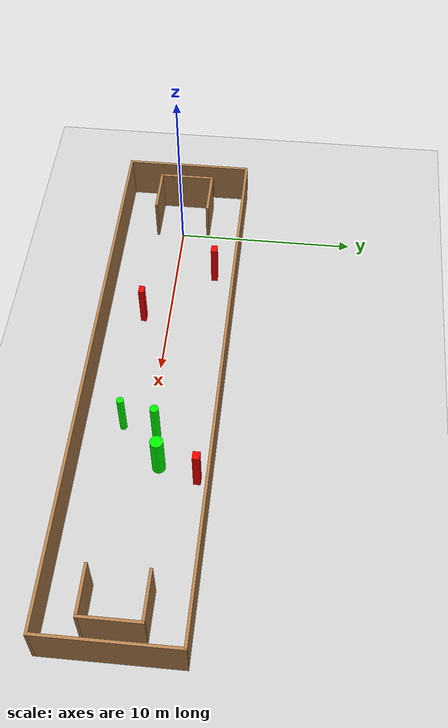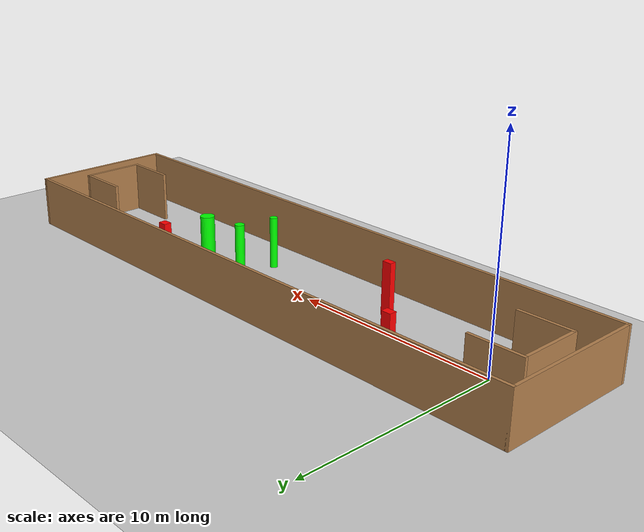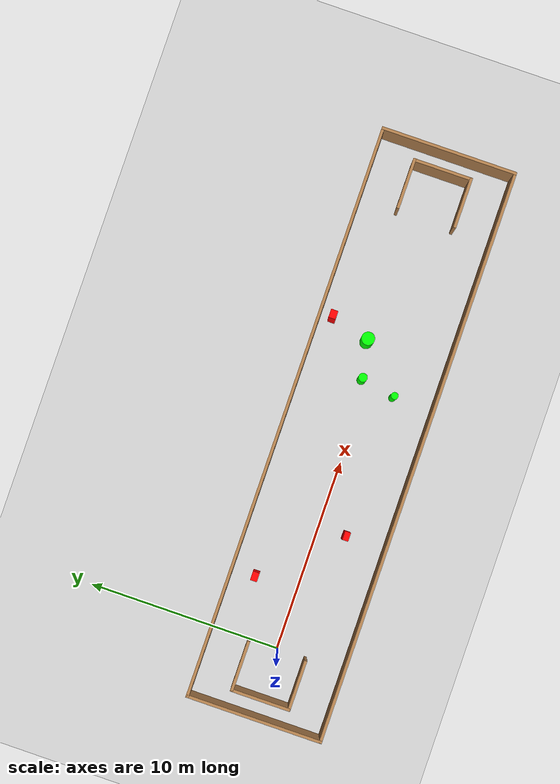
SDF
<sdf version="1.7">
 <world name="default">
  <light name="sun" type="directional">
   <pose>0 0 10 0 -0 0</pose>
   <diffuse>0.8 0.8 0.8 1</diffuse>
   <specular>0.2 0.2 0.2 1</specular>
   <attenuation>
    <range>1000</range>
    <constant>0.9</constant>
    <linear>0.01</linear>
    <quadratic>0.001</quadratic>
   </attenuation>
   <direction>-0.5 0.1 -0.9</direction>
   <spot><inner_angle>0</inner_angle><outer_angle>0</outer_angle><falloff>0</falloff></spot>
  </light>
  <model name="ground_plane">
   <static>1</static>
   <link name="link">
    <collision name="collision">
     <geometry><plane><normal>0 0 1</normal><size>100 100</size></plane></geometry>
     <surface>
      <contact><collide_bitmask>65535</collide_bitmask></contact>
      <friction><ode><mu>100</mu><mu2>50</mu2></ode></friction>
     </surface>
    </collision>
    <visual name="visual">
     <cast_shadows>0</cast_shadows>
     <geometry><plane><normal>0 0 1</normal><size>100 100</size></plane></geometry>
     <material>
      <script><uri>file://media/materials/scripts/gazebo.material</uri><name>Gazebo/Grey</name></script>
     </material>
    </visual>
   </link>
  </model>
  <gravity>0 0 -9.8</gravity>
  <magnetic_field>6e-06 2.3e-05 -4.2e-05</magnetic_field>
  <atmosphere type="adiabatic"/>
  <physics type="ode">
   <max_step_size>0.001</max_step_size>
   <real_time_factor>1</real_time_factor>
   <real_time_update_rate>1000</real_time_update_rate>
  </physics>
  <scene><ambient>0.4 0.4 0.4 1</ambient><background>0.7 0.7 0.7 1</background><shadows>1</shadows></scene>
  <spherical_coordinates>
   <surface_model>EARTH_WGS84</surface_model>
   <latitude_deg>0</latitude_deg>
   <longitude_deg>0</longitude_deg>
   <elevation>0</elevation>
   <heading_deg>0</heading_deg>
  </spherical_coordinates>
  <model name="my_base_walls">
   <link name="Wall_0">
    <collision name="Wall_0_Collision">
     <geometry><box><size>7.15 0.15 2.5</size></box></geometry>
     <pose>0 0 1.25 0 -0 0</pose>
    </collision>
    <visual name="Wall_0_Visual">
     <pose>0 0 1.25 0 -0 0</pose>
     <geometry><box><size>7.15 0.15 2.5</size></box></geometry>
     <material>
      <script><uri>file://media/materials/scripts/gazebo.material</uri><name>Gazebo/Wood</name></script>
      <ambient>1 1 1 1</ambient>
     </material>
     <meta><layer>0</layer></meta>
    </visual>
    <pose>-15 0 0 0 -0 1.5708</pose>
   </link>
   <link name="Wall_10">
    <collision name="Wall_10_Collision">
     <geometry><box><size>2.65 0.15 2.5</size></box></geometry>
     <pose>0 0 1.25 0 -0 0</pose>
    </collision>
    <visual name="Wall_10_Visual">
     <pose>0 0 1.25 0 -0 0</pose>
     <geometry><box><size>2.65 0.15 2.5</size></box></geometry>
     <material>
      <script><uri>file://media/materials/scripts/gazebo.material</uri><name>Gazebo/Wood</name></script>
      <ambient>1 1 1 1</ambient>
     </material>
     <meta><layer>0</layer></meta>
    </visual>
    <pose>-12.75 -1.5 0 0 -0 0</pose>
   </link>
   <link name="Wall_12">
    <collision name="Wall_12_Collision">
     <geometry><box><size>2.65 0.15 2.5</size></box></geometry>
     <pose>0 0 1.25 0 -0 0</pose>
    </collision>
    <visual name="Wall_12_Visual">
     <pose>0 0 1.25 0 -0 0</pose>
     <geometry><box><size>2.65 0.15 2.5</size></box></geometry>
     <material>
      <script><uri>file://media/materials/scripts/gazebo.material</uri><name>Gazebo/Wood</name></script>
      <ambient>1 1 1 1</ambient>
     </material>
     <meta><layer>0</layer></meta>
    </visual>
    <pose>-12.75 1.5 0 0 -0 0</pose>
   </link>
   <link name="Wall_14">
    <collision name="Wall_14_Collision">
     <geometry><box><size>3.15 0.15 2.5</size></box></geometry>
     <pose>0 0 1.25 0 -0 0</pose>
    </collision>
    <visual name="Wall_14_Visual">
     <pose>0 0 1.25 0 -0 0</pose>
     <geometry><box><size>3.15 0.15 2.5</size></box></geometry>
     <material>
      <script><uri>file://media/materials/scripts/gazebo.material</uri><name>Gazebo/Wood</name></script>
      <ambient>1 1 1 1</ambient>
     </material>
     <meta><layer>0</layer></meta>
    </visual>
    <pose>14 0 0 0 -0 -1.5708</pose>
   </link>
   <link name="Wall_15">
    <collision name="Wall_15_Collision">
     <geometry><box><size>2.65 0.15 2.5</size></box></geometry>
     <pose>0 0 1.25 0 -0 0</pose>
    </collision>
    <visual name="Wall_15_Visual">
     <pose>0 0 1.25 0 -0 0</pose>
     <geometry><box><size>2.65 0.15 2.5</size></box></geometry>
     <material>
      <script><uri>file://media/materials/scripts/gazebo.material</uri><name>Gazebo/Wood</name></script>
      <ambient>1 1 1 1</ambient>
     </material>
     <meta><layer>0</layer></meta>
    </visual>
    <pose>12.75 -1.5 0 0 -0 3.14159</pose>
   </link>
   <link name="Wall_17">
    <collision name="Wall_17_Collision">
     <geometry><box><size>2.65 0.15 2.5</size></box></geometry>
     <pose>0 0 1.25 0 -0 0</pose>
    </collision>
    <visual name="Wall_17_Visual">
     <pose>0 0 1.25 0 -0 0</pose>
     <geometry><box><size>2.65 0.15 2.5</size></box></geometry>
     <material>
      <script><uri>file://media/materials/scripts/gazebo.material</uri><name>Gazebo/Wood</name></script>
      <ambient>1 1 1 1</ambient>
     </material>
     <meta><layer>0</layer></meta>
    </visual>
    <pose>12.75 1.5 0 0 -0 3.14159</pose>
   </link>
   <link name="Wall_2">
    <collision name="Wall_2_Collision">
     <geometry><box><size>30.15 0.15 2.5</size></box></geometry>
     <pose>0 0 1.25 0 -0 0</pose>
    </collision>
    <visual name="Wall_2_Visual">
     <pose>0 0 1.25 0 -0 0</pose>
     <geometry><box><size>30.15 0.15 2.5</size></box></geometry>
     <material>
      <script><uri>file://media/materials/scripts/gazebo.material</uri><name>Gazebo/Wood</name></script>
      <ambient>1 1 1 1</ambient>
     </material>
     <meta><layer>0</layer></meta>
    </visual>
    <pose>-0 -3.5 0 0 -0 0</pose>
   </link>
   <link name="Wall_4">
    <collision name="Wall_4_Collision">
     <geometry><box><size>30.15 0.15 2.5</size></box></geometry>
     <pose>0 0 1.25 0 -0 0</pose>
    </collision>
    <visual name="Wall_4_Visual">
     <pose>0 0 1.25 0 -0 0</pose>
     <geometry><box><size>30.15 0.15 2.5</size></box></geometry>
     <material>
      <script><uri>file://media/materials/scripts/gazebo.material</uri><name>Gazebo/Wood</name></script>
      <ambient>1 1 1 1</ambient>
     </material>
     <meta><layer>0</layer></meta>
    </visual>
    <pose>-0 3.5 0 0 -0 0</pose>
   </link>
   <link name="Wall_6">
    <collision name="Wall_6_Collision">
     <geometry><box><size>7.15 0.15 2.5</size></box></geometry>
     <pose>0 0 1.25 0 -0 0</pose>
    </collision>
    <visual name="Wall_6_Visual">
     <pose>0 0 1.25 0 -0 0</pose>
     <geometry><box><size>7.15 0.15 2.5</size></box></geometry>
     <material>
      <script><uri>file://media/materials/scripts/gazebo.material</uri><name>Gazebo/Wood</name></script>
      <ambient>1 1 1 1</ambient>
     </material>
     <meta><layer>0</layer></meta>
    </visual>
    <pose>15 0 0 0 -0 -1.5708</pose>
   </link>
   <link name="Wall_9">
    <collision name="Wall_9_Collision">
     <geometry><box><size>3.15 0.15 2.5</size></box></geometry>
     <pose>0 0 1.25 0 -0 0</pose>
    </collision>
    <visual name="Wall_9_Visual">
     <pose>0 0 1.25 0 -0 0</pose>
     <geometry><box><size>3.15 0.15 2.5</size></box></geometry>
     <material>
      <script><uri>file://media/materials/scripts/gazebo.material</uri><name>Gazebo/Wood</name></script>
      <ambient>1 1 1 1</ambient>
     </material>
     <meta><layer>0</layer></meta>
    </visual>
    <pose>-14 0 0 0 -0 -1.5708</pose>
   </link>
   <static>1</static>
   <pose>11.5 0 0 0 -0 0</pose>
  </model>
  <model name="cylinder1">
   <static>1</static>
   <link name="link">
    <inertial>
     <mass>1</mass>
     <inertia><ixx>0.5</ixx><ixy>0</ixy><ixz>0</ixz><iyy>0.5</iyy><iyz>0</iyz><izz>1</izz></inertia>
    </inertial>
    <collision name="collision">
     <geometry><cylinder><radius>0.18604366599296618</radius><length>2.5</length></cylinder></geometry>
    </collision>
    <visual name="visual">
     <geometry><cylinder><radius>0.18604366599296618</radius><length>2.5</length></cylinder></geometry>
     <material>
      <ambient>0 1 0 1</ambient>
      <diffuse>0 1 0 1</diffuse>
      <specular>0.1 0.1 0.1 1</specular>
      <emissive>0 0 0 0</emissive>
     </material>
    </visual>
   </link>
   <pose>13.99029638994249 -1.4029179549534314 1.25 0 0 0</pose>
  </model>
  <model name="cylinder2">
   <static>1</static>
   <link name="link">
    <inertial>
     <mass>1</mass>
     <inertia><ixx>0.5</ixx><ixy>0</ixy><ixz>0</ixz><iyy>0.5</iyy><iyz>0</iyz><izz>1</izz></inertia>
    </inertial>
    <collision name="collision">
     <geometry><cylinder><radius>0.22919699678284688</radius><length>2.5</length></cylinder></geometry>
    </collision>
    <visual name="visual">
     <geometry><cylinder><radius>0.22919699678284688</radius><length>2.5</length></cylinder></geometry>
     <material>
      <ambient>0 1 0 1</ambient>
      <diffuse>0 1 0 1</diffuse>
      <specular>0.1 0.1 0.1 1</specular>
      <emissive>0 0 0 0</emissive>
     </material>
    </visual>
   </link>
   <pose>14.33569792205106 0.3919848205506167 1.25 0 0 0</pose>
  </model>
  <model name="cylinder3">
   <static>1</static>
   <link name="link">
    <inertial>
     <mass>1</mass>
     <inertia><ixx>0.5</ixx><ixy>0</ixy><ixz>0</ixz><iyy>0.5</iyy><iyz>0</iyz><izz>1</izz></inertia>
    </inertial>
    <collision name="collision">
     <geometry><cylinder><radius>0.3425097657455388</radius><length>2.5</length></cylinder></geometry>
    </collision>
    <visual name="visual">
     <geometry><cylinder><radius>0.3425097657455388</radius><length>2.5</length></cylinder></geometry>
     <material>
      <ambient>0 1 0 1</ambient>
      <diffuse>0 1 0 1</diffuse>
      <specular>0.1 0.1 0.1 1</specular>
      <emissive>0 0 0 0</emissive>
     </material>
    </visual>
   </link>
   <pose>16.265569492595475 0.7809443225832666 1.25 0 0 0</pose>
  </model>
  <model name="box1">
   <static>1</static>
   <link name="link">
    <inertial>
     <mass>1</mass>
     <inertia><ixx>0.083</ixx><ixy>0</ixy><ixz>0</ixz><iyy>0.083</iyy><iyz>0</iyz><izz>0.083</izz></inertia>
    </inertial>
    <collision name="collision">
     <geometry><box><size>0.4657020973241332 0.305941661875272 2.5</size></box></geometry>
    </collision>
    <visual name="visual">
     <geometry><box><size>0.4657020973241332 0.305941661875272 2.5</size></box></geometry>
     <material>
      <ambient>1 0 0 1</ambient>
      <diffuse>1 0 0 1</diffuse>
      <specular>0.1 0.1 0.1 1</specular>
      <emissive>0 0 0 0</emissive>
     </material>
    </visual>
    <sensor name="my_contact" type="contact">
     <contact><collision>box_collision</collision><topic>__default_topic__</topic></contact>
    </sensor>
   </link>
   <pose>6.5866579665607325 -1.4084724503708967 1.25 0 0 0</pose>
  </model>
  <model name="box2">
   <static>1</static>
   <link name="link">
    <inertial>
     <mass>1</mass>
     <inertia><ixx>0.083</ixx><ixy>0</ixy><ixz>0</ixz><iyy>0.083</iyy><iyz>0</iyz><izz>0.083</izz></inertia>
    </inertial>
    <collision name="collision">
     <geometry><box><size>0.462472381147836 0.34705133985370634 2.5</size></box></geometry>
    </collision>
    <visual name="visual">
     <geometry><box><size>0.462472381147836 0.34705133985370634 2.5</size></box></geometry>
     <material>
      <ambient>1 0 0 1</ambient>
      <diffuse>1 0 0 1</diffuse>
      <specular>0.1 0.1 0.1 1</specular>
      <emissive>0 0 0 0</emissive>
     </material>
    </visual>
    <sensor name="my_contact" type="contact">
     <contact><collision>box_collision</collision><topic>__default_topic__</topic></contact>
    </sensor>
   </link>
   <pose>3.205570874270089 2.2588495243223043 1.25 0 0 0</pose>
  </model>
  <model name="box3">
   <static>1</static>
   <link name="link">
    <inertial>
     <mass>1</mass>
     <inertia><ixx>0.083</ixx><ixy>0</ixy><ixz>0</ixz><iyy>0.083</iyy><iyz>0</iyz><izz>0.083</izz></inertia>
    </inertial>
    <collision name="collision">
     <geometry><box><size>0.4418436520141191 0.37469731192999545 2.5</size></box></geometry>
    </collision>
    <visual name="visual">
     <geometry><box><size>0.4418436520141191 0.37469731192999545 2.5</size></box></geometry>
     <material>
      <ambient>1 0 0 1</ambient>
      <diffuse>1 0 0 1</diffuse>
      <specular>0.1 0.1 0.1 1</specular>
      <emissive>0 0 0 0</emissive>
     </material>
    </visual>
    <sensor name="my_contact" type="contact">
     <contact><collision>box_collision</collision><topic>__default_topic__</topic></contact>
    </sensor>
   </link>
   <pose>16.85446971401235 2.8230237720302913 1.25 0 0 0</pose>
  </model>
 </world>
</sdf>
